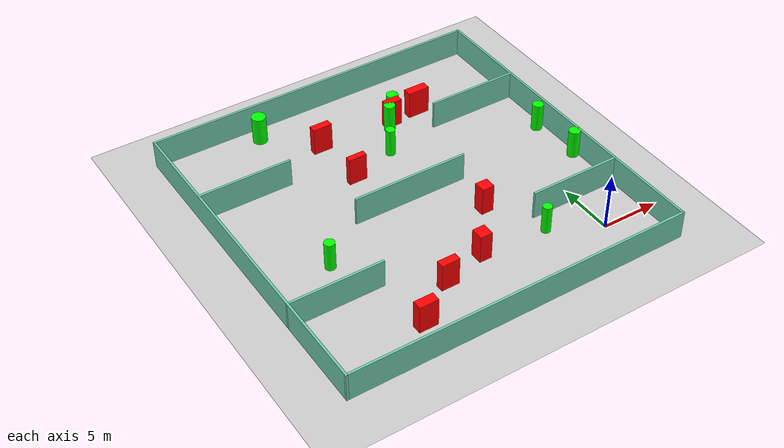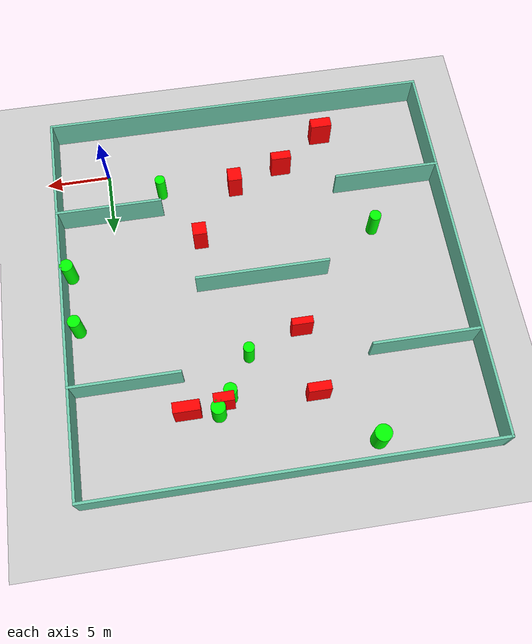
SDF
<sdf version="1.7">
 <world name="default">
  <light name="sun" type="directional">
   <pose>0 0 10 0 -0 0</pose>
   <diffuse>0.8 0.8 0.8 1</diffuse>
   <specular>0.2 0.2 0.2 1</specular>
   <attenuation>
    <range>1000</range>
    <constant>0.9</constant>
    <linear>0.01</linear>
    <quadratic>0.001</quadratic>
   </attenuation>
   <direction>-0.5 0.1 -0.9</direction>
   <spot><inner_angle>0</inner_angle><outer_angle>0</outer_angle><falloff>0</falloff></spot>
  </light>
  <model name="ground_plane">
   <static>1</static>
   <link name="link">
    <collision name="collision">
     <geometry><plane><normal>0 0 1</normal><size>100 100</size></plane></geometry>
     <surface>
      <contact><collide_bitmask>65535</collide_bitmask></contact>
      <friction><ode><mu>100</mu><mu2>50</mu2></ode></friction>
     </surface>
    </collision>
    <visual name="visual">
     <cast_shadows>0</cast_shadows>
     <geometry><plane><normal>0 0 1</normal><size>100 100</size></plane></geometry>
     <material>
      <script><uri>file://media/materials/scripts/gazebo.material</uri><name>Gazebo/Grey</name></script>
     </material>
    </visual>
   </link>
  </model>
  <gravity>0 0 -9.8</gravity>
  <magnetic_field>6e-06 2.3e-05 -4.2e-05</magnetic_field>
  <atmosphere type="adiabatic"/>
  <physics type="ode">
   <max_step_size>0.001</max_step_size>
   <real_time_factor>1</real_time_factor>
   <real_time_update_rate>1000</real_time_update_rate>
  </physics>
  <scene><ambient>0.4 0.4 0.4 1</ambient><background>0.7 0.7 0.7 1</background><shadows>1</shadows></scene>
  <spherical_coordinates>
   <surface_model>EARTH_WGS84</surface_model>
   <latitude_deg>0</latitude_deg>
   <longitude_deg>0</longitude_deg>
   <elevation>0</elevation>
   <heading_deg>0</heading_deg>
  </spherical_coordinates>
  <model name="my_base_walls">
   <link name="Wall_10">
    <collision name="Wall_10_Collision">
     <geometry><box><size>8.2 0.2 2.5</size></box></geometry>
     <pose>0 0 1.25 0 -0 0</pose>
    </collision>
    <visual name="Wall_10_Visual">
     <pose>0 0 1.25 0 -0 0</pose>
     <geometry><box><size>8.2 0.2 2.5</size></box></geometry>
     <material>
      <script><uri>file://media/materials/scripts/gazebo.material</uri><name>Gazebo/Grey</name></script>
      <ambient>0.435294 0.796078 0.67451 1</ambient>
     </material>
     <meta><layer>0</layer></meta>
    </visual>
    <pose>-11 -7 0 0 -0 0</pose>
   </link>
   <link name="Wall_12">
    <collision name="Wall_12_Collision">
     <geometry><box><size>8.2 0.2 2.5</size></box></geometry>
     <pose>0 0 1.25 0 -0 0</pose>
    </collision>
    <visual name="Wall_12_Visual">
     <pose>0 0 1.25 0 -0 0</pose>
     <geometry><box><size>8.2 0.2 2.5</size></box></geometry>
     <material>
      <script><uri>file://media/materials/scripts/gazebo.material</uri><name>Gazebo/Grey</name></script>
      <ambient>0.435294 0.796078 0.67451 1</ambient>
     </material>
     <meta><layer>0</layer></meta>
    </visual>
    <pose>-11 7 0 0 -0 0</pose>
   </link>
   <link name="Wall_14">
    <collision name="Wall_14_Collision">
     <geometry><box><size>8.2 0.2 2.5</size></box></geometry>
     <pose>0 0 1.25 0 -0 0</pose>
    </collision>
    <visual name="Wall_14_Visual">
     <pose>0 0 1.25 0 -0 0</pose>
     <geometry><box><size>8.2 0.2 2.5</size></box></geometry>
     <material>
      <script><uri>file://media/materials/scripts/gazebo.material</uri><name>Gazebo/Grey</name></script>
      <ambient>0.435294 0.796078 0.67451 1</ambient>
     </material>
     <meta><layer>0</layer></meta>
    </visual>
    <pose>11 7 0 0 -0 3.14159</pose>
   </link>
   <link name="Wall_16">
    <collision name="Wall_16_Collision">
     <geometry><box><size>10.2 0.2 2.5</size></box></geometry>
     <pose>0 0 1.25 0 -0 0</pose>
    </collision>
    <visual name="Wall_16_Visual">
     <pose>0 0 1.25 0 -0 0</pose>
     <geometry><box><size>10.2 0.2 2.5</size></box></geometry>
     <material>
      <script><uri>file://media/materials/scripts/gazebo.material</uri><name>Gazebo/Grey</name></script>
      <ambient>0.435294 0.796078 0.67451 1</ambient>
     </material>
     <meta><layer>0</layer></meta>
    </visual>
    <pose>0 0 0 0 -0 3.14159</pose>
   </link>
   <link name="Wall_2">
    <collision name="Wall_2_Collision">
     <geometry><box><size>30.2 0.2 2.5</size></box></geometry>
     <pose>0 0 1.25 0 -0 0</pose>
    </collision>
    <visual name="Wall_2_Visual">
     <pose>0 0 1.25 0 -0 0</pose>
     <geometry><box><size>30.2 0.2 2.5</size></box></geometry>
     <material>
      <script><uri>file://media/materials/scripts/gazebo.material</uri><name>Gazebo/Grey</name></script>
      <ambient>0.435294 0.796078 0.67451 1</ambient>
     </material>
     <meta><layer>0</layer></meta>
    </visual>
    <pose>0 -15 0 0 -0 3.14159</pose>
   </link>
   <link name="Wall_3">
    <collision name="Wall_3_Collision">
     <geometry><box><size>30.2 0.2 2.5</size></box></geometry>
     <pose>0 0 1.25 0 -0 0</pose>
    </collision>
    <visual name="Wall_3_Visual">
     <pose>0 0 1.25 0 -0 0</pose>
     <geometry><box><size>30.2 0.2 2.5</size></box></geometry>
     <material>
      <script><uri>file://media/materials/scripts/gazebo.material</uri><name>Gazebo/Grey</name></script>
      <ambient>0.435294 0.796078 0.67451 1</ambient>
     </material>
     <meta><layer>0</layer></meta>
    </visual>
    <pose>-15 0 0 0 -0 1.5708</pose>
   </link>
   <link name="Wall_4">
    <collision name="Wall_4_Collision">
     <geometry><box><size>30.2 0.2 2.5</size></box></geometry>
     <pose>0 0 1.25 0 -0 0</pose>
    </collision>
    <visual name="Wall_4_Visual">
     <pose>0 0 1.25 0 -0 0</pose>
     <geometry><box><size>30.2 0.2 2.5</size></box></geometry>
     <material>
      <script><uri>file://media/materials/scripts/gazebo.material</uri><name>Gazebo/Grey</name></script>
      <ambient>0.435294 0.796078 0.67451 1</ambient>
     </material>
     <meta><layer>0</layer></meta>
    </visual>
    <pose>0 15 0 0 -0 0</pose>
   </link>
   <link name="Wall_6">
    <collision name="Wall_6_Collision">
     <geometry><box><size>30.2 0.2 2.5</size></box></geometry>
     <pose>0 0 1.25 0 -0 0</pose>
    </collision>
    <visual name="Wall_6_Visual">
     <pose>0 0 1.25 0 -0 0</pose>
     <geometry><box><size>30.2 0.2 2.5</size></box></geometry>
     <material>
      <script><uri>file://media/materials/scripts/gazebo.material</uri><name>Gazebo/Grey</name></script>
      <ambient>0.435294 0.796078 0.67451 1</ambient>
     </material>
     <meta><layer>0</layer></meta>
    </visual>
    <pose>15 0 0 0 -0 1.5708</pose>
   </link>
   <link name="Wall_8">
    <collision name="Wall_8_Collision">
     <geometry><box><size>8.2 0.2 2.5</size></box></geometry>
     <pose>0 0 1.25 0 -0 0</pose>
    </collision>
    <visual name="Wall_8_Visual">
     <pose>0 0 1.25 0 -0 0</pose>
     <geometry><box><size>8.2 0.2 2.5</size></box></geometry>
     <material>
      <script><uri>file://media/materials/scripts/gazebo.material</uri><name>Gazebo/Grey</name></script>
      <ambient>0.435294 0.796078 0.67451 1</ambient>
     </material>
     <meta><layer>0</layer></meta>
    </visual>
    <pose>11 -7 0 0 -0 3.14159</pose>
   </link>
   <static>1</static>
   <pose>-11 11 0 0 -0 0</pose>
  </model>
  <model name="cylinder1">
   <static>1</static>
   <link name="link">
    <inertial>
     <mass>1</mass>
     <inertia><ixx>0.5</ixx><ixy>0</ixy><ixz>0</ixz><iyy>0.5</iyy><iyz>0</iyz><izz>1</izz></inertia>
    </inertial>
    <collision name="collision">
     <geometry><cylinder><radius>0.4904599159763252</radius><length>2.5</length></cylinder></geometry>
    </collision>
    <visual name="visual">
     <geometry><cylinder><radius>0.4904599159763252</radius><length>2.5</length></cylinder></geometry>
     <material>
      <ambient>0 1 0 1</ambient>
      <diffuse>0 1 0 1</diffuse>
      <specular>0.1 0.1 0.1 1</specular>
      <emissive>0 0 0 0</emissive>
     </material>
    </visual>
   </link>
   <pose>-7.315684661284985 19.81709592111706 1.25 0 0 0</pose>
  </model>
  <model name="cylinder2">
   <static>1</static>
   <link name="link">
    <inertial>
     <mass>1</mass>
     <inertia><ixx>0.5</ixx><ixy>0</ixy><ixz>0</ixz><iyy>0.5</iyy><iyz>0</iyz><izz>1</izz></inertia>
    </inertial>
    <collision name="collision">
     <geometry><cylinder><radius>0.3952300160579691</radius><length>2.5</length></cylinder></geometry>
    </collision>
    <visual name="visual">
     <geometry><cylinder><radius>0.3952300160579691</radius><length>2.5</length></cylinder></geometry>
     <material>
      <ambient>0 1 0 1</ambient>
      <diffuse>0 1 0 1</diffuse>
      <specular>0.1 0.1 0.1 1</specular>
      <emissive>0 0 0 0</emissive>
     </material>
    </visual>
   </link>
   <pose>-4.176564009962634 2.237293987013598 1.25 0 0 0</pose>
  </model>
  <model name="cylinder3">
   <static>1</static>
   <link name="link">
    <inertial>
     <mass>1</mass>
     <inertia><ixx>0.5</ixx><ixy>0</ixy><ixz>0</ixz><iyy>0.5</iyy><iyz>0</iyz><izz>1</izz></inertia>
    </inertial>
    <collision name="collision">
     <geometry><cylinder><radius>0.5341164606795905</radius><length>2.5</length></cylinder></geometry>
    </collision>
    <visual name="visual">
     <geometry><cylinder><radius>0.5341164606795905</radius><length>2.5</length></cylinder></geometry>
     <material>
      <ambient>0 1 0 1</ambient>
      <diffuse>0 1 0 1</diffuse>
      <specular>0.1 0.1 0.1 1</specular>
      <emissive>0 0 0 0</emissive>
     </material>
    </visual>
   </link>
   <pose>-6.30984558970278 20.95033383102899 1.25 0 0 0</pose>
  </model>
  <model name="cylinder4">
   <static>1</static>
   <link name="link">
    <inertial>
     <mass>1</mass>
     <inertia><ixx>0.5</ixx><ixy>0</ixy><ixz>0</ixz><iyy>0.5</iyy><iyz>0</iyz><izz>1</izz></inertia>
    </inertial>
    <collision name="collision">
     <geometry><cylinder><radius>0.5036307428643849</radius><length>2.5</length></cylinder></geometry>
    </collision>
    <visual name="visual">
     <geometry><cylinder><radius>0.5036307428643849</radius><length>2.5</length></cylinder></geometry>
     <material>
      <ambient>0 1 0 1</ambient>
      <diffuse>0 1 0 1</diffuse>
      <specular>0.1 0.1 0.1 1</specular>
      <emissive>0 0 0 0</emissive>
     </material>
    </visual>
   </link>
   <pose>3.5343712993470007 8.542578950890134 1.25 0 0 0</pose>
  </model>
  <model name="cylinder5">
   <static>1</static>
   <link name="link">
    <inertial>
     <mass>1</mass>
     <inertia><ixx>0.5</ixx><ixy>0</ixy><ixz>0</ixz><iyy>0.5</iyy><iyz>0</iyz><izz>1</izz></inertia>
    </inertial>
    <collision name="collision">
     <geometry><cylinder><radius>0.48306794565461375</radius><length>2.5</length></cylinder></geometry>
    </collision>
    <visual name="visual">
     <geometry><cylinder><radius>0.48306794565461375</radius><length>2.5</length></cylinder></geometry>
     <material>
      <ambient>0 1 0 1</ambient>
      <diffuse>0 1 0 1</diffuse>
      <specular>0.1 0.1 0.1 1</specular>
      <emissive>0 0 0 0</emissive>
     </material>
    </visual>
   </link>
   <pose>3.2336929533894754 13.087640025451492 1.25 0 0 0</pose>
  </model>
  <model name="cylinder6">
   <static>1</static>
   <link name="link">
    <inertial>
     <mass>1</mass>
     <inertia><ixx>0.5</ixx><ixy>0</ixy><ixz>0</ixz><iyy>0.5</iyy><iyz>0</iyz><izz>1</izz></inertia>
    </inertial>
    <collision name="collision">
     <geometry><cylinder><radius>0.4475659797365974</radius><length>2.5</length></cylinder></geometry>
    </collision>
    <visual name="visual">
     <geometry><cylinder><radius>0.4475659797365974</radius><length>2.5</length></cylinder></geometry>
     <material>
      <ambient>0 1 0 1</ambient>
      <diffuse>0 1 0 1</diffuse>
      <specular>0.1 0.1 0.1 1</specular>
      <emissive>0 0 0 0</emissive>
     </material>
    </visual>
   </link>
   <pose>-20.27519863772374 7.860545218057467 1.25 0 0 0</pose>
  </model>
  <model name="cylinder7">
   <static>1</static>
   <link name="link">
    <inertial>
     <mass>1</mass>
     <inertia><ixx>0.5</ixx><ixy>0</ixy><ixz>0</ixz><iyy>0.5</iyy><iyz>0</iyz><izz>1</izz></inertia>
    </inertial>
    <collision name="collision">
     <geometry><cylinder><radius>0.6249438014197755</radius><length>2.5</length></cylinder></geometry>
    </collision>
    <visual name="visual">
     <geometry><cylinder><radius>0.6249438014197755</radius><length>2.5</length></cylinder></geometry>
     <material>
      <ambient>0 1 0 1</ambient>
      <diffuse>0 1 0 1</diffuse>
      <specular>0.1 0.1 0.1 1</specular>
      <emissive>0 0 0 0</emissive>
     </material>
    </visual>
   </link>
   <pose>-17.291437024320622 24.436340858602016 1.25 0 0 0</pose>
  </model>
  <model name="cylinder8">
   <static>1</static>
   <link name="link">
    <inertial>
     <mass>1</mass>
     <inertia><ixx>0.5</ixx><ixy>0</ixy><ixz>0</ixz><iyy>0.5</iyy><iyz>0</iyz><izz>1</izz></inertia>
    </inertial>
    <collision name="collision">
     <geometry><cylinder><radius>0.4098961981282996</radius><length>2.5</length></cylinder></geometry>
    </collision>
    <visual name="visual">
     <geometry><cylinder><radius>0.4098961981282996</radius><length>2.5</length></cylinder></geometry>
     <material>
      <ambient>0 1 0 1</ambient>
      <diffuse>0 1 0 1</diffuse>
      <specular>0.1 0.1 0.1 1</specular>
      <emissive>0 0 0 0</emissive>
     </material>
    </visual>
   </link>
   <pose>-9.063834981765972 16.953180810535592 1.25 0 0 0</pose>
  </model>
  <model name="box1">
   <static>1</static>
   <link name="link">
    <inertial>
     <mass>1</mass>
     <inertia><ixx>0.083</ixx><ixy>0</ixy><ixz>0</ixz><iyy>0.083</iyy><iyz>0</iyz><izz>0.083</izz></inertia>
    </inertial>
    <collision name="collision">
     <geometry><box><size>1.0759703394843778 1.1208731294504453 2.5</size></box></geometry>
    </collision>
    <visual name="visual">
     <geometry><box><size>1.0759703394843778 1.1208731294504453 2.5</size></box></geometry>
     <material>
      <ambient>1 0 0 1</ambient>
      <diffuse>1 0 0 1</diffuse>
      <specular>0.1 0.1 0.1 1</specular>
      <emissive>0 0 0 0</emissive>
     </material>
    </visual>
    <sensor name="my_contact" type="contact">
     <contact><collision>box_collision</collision><topic>__default_topic__</topic></contact>
    </sensor>
   </link>
   <pose>-10.044563234731424 2.6056189895062465 1.25 0 0 0</pose>
  </model>
  <model name="box2">
   <static>1</static>
   <link name="link">
    <inertial>
     <mass>1</mass>
     <inertia><ixx>0.083</ixx><ixy>0</ixy><ixz>0</ixz><iyy>0.083</iyy><iyz>0</iyz><izz>0.083</izz></inertia>
    </inertial>
    <collision name="collision">
     <geometry><box><size>1.9618268142991857 0.7820480151636785 2.5</size></box></geometry>
    </collision>
    <visual name="visual">
     <geometry><box><size>1.9618268142991857 0.7820480151636785 2.5</size></box></geometry>
     <material>
      <ambient>1 0 0 1</ambient>
      <diffuse>1 0 0 1</diffuse>
      <specular>0.1 0.1 0.1 1</specular>
      <emissive>0 0 0 0</emissive>
     </material>
    </visual>
    <sensor name="my_contact" type="contact">
     <contact><collision>box_collision</collision><topic>__default_topic__</topic></contact>
    </sensor>
   </link>
   <pose>-4.098726658859622 20.561238300380676 1.25 0 0 0</pose>
  </model>
  <model name="box3">
   <static>1</static>
   <link name="link">
    <inertial>
     <mass>1</mass>
     <inertia><ixx>0.083</ixx><ixy>0</ixy><ixz>0</ixz><iyy>0.083</iyy><iyz>0</iyz><izz>0.083</izz></inertia>
    </inertial>
    <collision name="collision">
     <geometry><box><size>1.6981565661311133 0.6624557314466832 2.5</size></box></geometry>
    </collision>
    <visual name="visual">
     <geometry><box><size>1.6981565661311133 0.6624557314466832 2.5</size></box></geometry>
     <material>
      <ambient>1 0 0 1</ambient>
      <diffuse>1 0 0 1</diffuse>
      <specular>0.1 0.1 0.1 1</specular>
      <emissive>0 0 0 0</emissive>
     </material>
    </visual>
    <sensor name="my_contact" type="contact">
     <contact><collision>box_collision</collision><topic>__default_topic__</topic></contact>
    </sensor>
   </link>
   <pose>-13.578821352239213 20.548177918479254 1.25 0 0 0</pose>
  </model>
  <model name="box4">
   <static>1</static>
   <link name="link">
    <inertial>
     <mass>1</mass>
     <inertia><ixx>0.083</ixx><ixy>0</ixy><ixz>0</ixz><iyy>0.083</iyy><iyz>0</iyz><izz>0.083</izz></inertia>
    </inertial>
    <collision name="collision">
     <geometry><box><size>1.0836754481508932 1.0258706079479434 2.5</size></box></geometry>
    </collision>
    <visual name="visual">
     <geometry><box><size>1.0836754481508932 1.0258706079479434 2.5</size></box></geometry>
     <material>
      <ambient>1 0 0 1</ambient>
      <diffuse>1 0 0 1</diffuse>
      <specular>0.1 0.1 0.1 1</specular>
      <emissive>0 0 0 0</emissive>
     </material>
    </visual>
    <sensor name="my_contact" type="contact">
     <contact><collision>box_collision</collision><topic>__default_topic__</topic></contact>
    </sensor>
   </link>
   <pose>-6.714763678101058 6.949668320747705 1.25 0 0 0</pose>
  </model>
  <model name="box5">
   <static>1</static>
   <link name="link">
    <inertial>
     <mass>1</mass>
     <inertia><ixx>0.083</ixx><ixy>0</ixy><ixz>0</ixz><iyy>0.083</iyy><iyz>0</iyz><izz>0.083</izz></inertia>
    </inertial>
    <collision name="collision">
     <geometry><box><size>1.5179375663323291 0.6979462284153028 2.5</size></box></geometry>
    </collision>
    <visual name="visual">
     <geometry><box><size>1.5179375663323291 0.6979462284153028 2.5</size></box></geometry>
     <material>
      <ambient>1 0 0 1</ambient>
      <diffuse>1 0 0 1</diffuse>
      <specular>0.1 0.1 0.1 1</specular>
      <emissive>0 0 0 0</emissive>
     </material>
    </visual>
    <sensor name="my_contact" type="contact">
     <contact><collision>box_collision</collision><topic>__default_topic__</topic></contact>
    </sensor>
   </link>
   <pose>-6.787381619208318 20.276191584627774 1.25 0 0 0</pose>
  </model>
  <model name="box6">
   <static>1</static>
   <link name="link">
    <inertial>
     <mass>1</mass>
     <inertia><ixx>0.083</ixx><ixy>0</ixy><ixz>0</ixz><iyy>0.083</iyy><iyz>0</iyz><izz>0.083</izz></inertia>
    </inertial>
    <collision name="collision">
     <geometry><box><size>1.5934376637563132 0.5393379408635175 2.5</size></box></geometry>
    </collision>
    <visual name="visual">
     <geometry><box><size>1.5934376637563132 0.5393379408635175 2.5</size></box></geometry>
     <material>
      <ambient>1 0 0 1</ambient>
      <diffuse>1 0 0 1</diffuse>
      <specular>0.1 0.1 0.1 1</specular>
      <emissive>0 0 0 0</emissive>
     </material>
    </visual>
    <sensor name="my_contact" type="contact">
     <contact><collision>box_collision</collision><topic>__default_topic__</topic></contact>
    </sensor>
   </link>
   <pose>-13.221069406509129 15.524282068789859 1.25 0 0 0</pose>
  </model>
  <model name="box7">
   <static>1</static>
   <link name="link">
    <inertial>
     <mass>1</mass>
     <inertia><ixx>0.083</ixx><ixy>0</ixy><ixz>0</ixz><iyy>0.083</iyy><iyz>0</iyz><izz>0.083</izz></inertia>
    </inertial>
    <collision name="collision">
     <geometry><box><size>1.6533659115955168 0.8213087249163533 2.5</size></box></geometry>
    </collision>
    <visual name="visual">
     <geometry><box><size>1.6533659115955168 0.8213087249163533 2.5</size></box></geometry>
     <material>
      <ambient>1 0 0 1</ambient>
      <diffuse>1 0 0 1</diffuse>
      <specular>0.1 0.1 0.1 1</specular>
      <emissive>0 0 0 0</emissive>
     </material>
    </visual>
    <sensor name="my_contact" type="contact">
     <contact><collision>box_collision</collision><topic>__default_topic__</topic></contact>
    </sensor>
   </link>
   <pose>-17.64439269567721 -1.1512336290178444 1.25 0 0 0</pose>
  </model>
  <model name="box8">
   <static>1</static>
   <link name="link">
    <inertial>
     <mass>1</mass>
     <inertia><ixx>0.083</ixx><ixy>0</ixy><ixz>0</ixz><iyy>0.083</iyy><iyz>0</iyz><izz>0.083</izz></inertia>
    </inertial>
    <collision name="collision">
     <geometry><box><size>1.564093943895247 0.6872992228340989 2.5</size></box></geometry>
    </collision>
    <visual name="visual">
     <geometry><box><size>1.564093943895247 0.6872992228340989 2.5</size></box></geometry>
     <material>
      <ambient>1 0 0 1</ambient>
      <diffuse>1 0 0 1</diffuse>
      <specular>0.1 0.1 0.1 1</specular>
      <emissive>0 0 0 0</emissive>
     </material>
    </visual>
    <sensor name="my_contact" type="contact">
     <contact><collision>box_collision</collision><topic>__default_topic__</topic></contact>
    </sensor>
   </link>
   <pose>-13.941600890482484 1.4267525210746008 1.25 0 0 0</pose>
  </model>
 </world>
</sdf>
